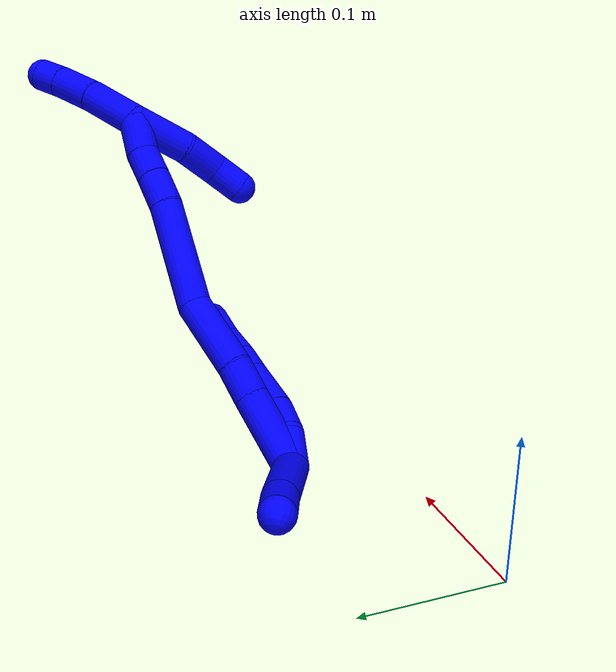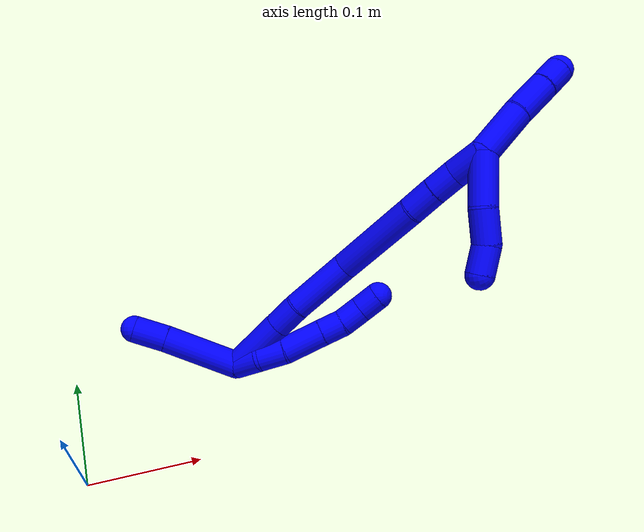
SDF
<sdf version="1.7">
 <world name="default">
  <model name="1">
   <static>0</static>
   <link name="1">
    <collision name="collision-cylinder-e_1_2_8">
     <pose>-0.000751 -0.003531 -0.012491 2.8661 -0.057766 -0.41094</pose>
     <geometry><cylinder><radius>0.0125</radius><length>0.026005</length></cylinder></geometry>
     <surface>
      <friction><ode><mu>1.16</mu><mu2>1.16</mu2><slip1>0</slip1><slip2>0</slip2></ode></friction>
      <contact><ode><kp>1e+06</kp><kd>1</kd><max_vel>0</max_vel><min_depth>0.001</min_depth></ode></contact>
     </surface>
    </collision>
    <visual name="visual-cylinder-e_1_2_8">
     <pose>-0.000751 -0.003531 -0.012491 2.8661 -0.057766 -0.41094</pose>
     <geometry><cylinder><radius>0.0125</radius><length>0.026005</length></cylinder></geometry>
     <material><ambient>0 0 1 1</ambient></material>
    </visual>
    <collision name="collision-cylinder-e_2_8_9">
     <pose>0.000203 -0.013168 -0.035561 2.6181 0.13867 0.507297</pose>
     <geometry><cylinder><radius>0.0125</radius><length>0.024664</length></cylinder></geometry>
     <surface>
      <friction><ode><mu>1.16</mu><mu2>1.16</mu2><slip1>0</slip1><slip2>0</slip2></ode></friction>
      <contact><ode><kp>1e+06</kp><kd>1</kd><max_vel>0</max_vel><min_depth>0.001</min_depth></ode></contact>
     </surface>
    </collision>
    <visual name="visual-cylinder-e_2_8_9">
     <pose>0.000203 -0.013168 -0.035561 2.6181 0.13867 0.507297</pose>
     <geometry><cylinder><radius>0.0125</radius><length>0.024664</length></cylinder></geometry>
     <material><ambient>0 0 1 1</ambient></material>
    </visual>
    <collision name="collision-cylinder-e_3_9_10">
     <pose>0.002963 -0.031369 -0.060692 2.44817 0.055726 0.153971</pose>
     <geometry><cylinder><radius>0.0125</radius><length>0.037906</length></cylinder></geometry>
     <surface>
      <friction><ode><mu>1.16</mu><mu2>1.16</mu2><slip1>0</slip1><slip2>0</slip2></ode></friction>
      <contact><ode><kp>1e+06</kp><kd>1</kd><max_vel>0</max_vel><min_depth>0.001</min_depth></ode></contact>
     </surface>
    </collision>
    <visual name="visual-cylinder-e_3_9_10">
     <pose>0.002963 -0.031369 -0.060692 2.44817 0.055726 0.153971</pose>
     <geometry><cylinder><radius>0.0125</radius><length>0.037906</length></cylinder></geometry>
     <material><ambient>0 0 1 1</ambient></material>
    </visual>
    <collision name="collision-cylinder-e_4_10_11">
     <pose>0.004492 -0.049854 -0.083383 2.47592 0.045662 0.131918</pose>
     <geometry><cylinder><radius>0.0125</radius><length>0.020714</length></cylinder></geometry>
     <surface>
      <friction><ode><mu>1.16</mu><mu2>1.16</mu2><slip1>0</slip1><slip2>0</slip2></ode></friction>
      <contact><ode><kp>1e+06</kp><kd>1</kd><max_vel>0</max_vel><min_depth>0.001</min_depth></ode></contact>
     </surface>
    </collision>
    <visual name="visual-cylinder-e_4_10_11">
     <pose>0.004492 -0.049854 -0.083383 2.47592 0.045662 0.131918</pose>
     <geometry><cylinder><radius>0.0125</radius><length>0.020714</length></cylinder></geometry>
     <material><ambient>0 0 1 1</ambient></material>
    </visual>
    <collision name="collision-cylinder-e_5_11_12">
     <pose>0.003633 -0.063397 -0.098863 2.36922 -0.129184 -0.315513</pose>
     <geometry><cylinder><radius>0.0125</radius><length>0.020674</length></cylinder></geometry>
     <surface>
      <friction><ode><mu>1.16</mu><mu2>1.16</mu2><slip1>0</slip1><slip2>0</slip2></ode></friction>
      <contact><ode><kp>1e+06</kp><kd>1</kd><max_vel>0</max_vel><min_depth>0.001</min_depth></ode></contact>
     </surface>
    </collision>
    <visual name="visual-cylinder-e_5_11_12">
     <pose>0.003633 -0.063397 -0.098863 2.36922 -0.129184 -0.315513</pose>
     <geometry><cylinder><radius>0.0125</radius><length>0.020674</length></cylinder></geometry>
     <material><ambient>0 0 1 1</ambient></material>
    </visual>
    <collision name="collision-cylinder-e_6_12_6">
     <pose>0.000164 -0.076534 -0.113951 2.48397 -0.214994 -0.612646</pose>
     <geometry><cylinder><radius>0.0125</radius><length>0.020036</length></cylinder></geometry>
     <surface>
      <friction><ode><mu>1.16</mu><mu2>1.16</mu2><slip1>0</slip1><slip2>0</slip2></ode></friction>
      <contact><ode><kp>1e+06</kp><kd>1</kd><max_vel>0</max_vel><min_depth>0.001</min_depth></ode></contact>
     </surface>
    </collision>
    <visual name="visual-cylinder-e_6_12_6">
     <pose>0.000164 -0.076534 -0.113951 2.48397 -0.214994 -0.612646</pose>
     <geometry><cylinder><radius>0.0125</radius><length>0.020036</length></cylinder></geometry>
     <material><ambient>0 0 1 1</ambient></material>
    </visual>
    <collision name="collision-cylinder-e_1_2_13">
     <pose>-0.0248 0.006392 0.023599 -0.26452 -0.792522 0.111208</pose>
     <geometry><cylinder><radius>0.0125</radius><length>0.069651</length></cylinder></geometry>
     <surface>
      <friction><ode><mu>1.16</mu><mu2>1.16</mu2><slip1>0</slip1><slip2>0</slip2></ode></friction>
      <contact><ode><kp>1e+06</kp><kd>1</kd><max_vel>0</max_vel><min_depth>0.001</min_depth></ode></contact>
     </surface>
    </collision>
    <visual name="visual-cylinder-e_1_2_13">
     <pose>-0.0248 0.006392 0.023599 -0.26452 -0.792522 0.111208</pose>
     <geometry><cylinder><radius>0.0125</radius><length>0.069651</length></cylinder></geometry>
     <material><ambient>0 0 1 1</ambient></material>
    </visual>
    <collision name="collision-cylinder-e_2_13_5">
     <pose>-0.06002 0.016344 0.057639 -0.328603 -0.756873 0.131651</pose>
     <geometry><cylinder><radius>0.0125</radius><length>0.030349</length></cylinder></geometry>
     <surface>
      <friction><ode><mu>1.16</mu><mu2>1.16</mu2><slip1>0</slip1><slip2>0</slip2></ode></friction>
      <contact><ode><kp>1e+06</kp><kd>1</kd><max_vel>0</max_vel><min_depth>0.001</min_depth></ode></contact>
     </surface>
    </collision>
    <visual name="visual-cylinder-e_2_13_5">
     <pose>-0.06002 0.016344 0.057639 -0.328603 -0.756873 0.131651</pose>
     <geometry><cylinder><radius>0.0125</radius><length>0.030349</length></cylinder></geometry>
     <material><ambient>0 0 1 1</ambient></material>
    </visual>
    <collision name="collision-cylinder-e_1_2_14">
     <pose>-0.009625 -0.015606 -0.021725 2.51866 -0.345393 -0.993071</pose>
     <geometry><cylinder><radius>0.0125</radius><length>0.056856</length></cylinder></geometry>
     <surface>
      <friction><ode><mu>1.16</mu><mu2>1.16</mu2><slip1>0</slip1><slip2>0</slip2></ode></friction>
      <contact><ode><kp>1e+06</kp><kd>1</kd><max_vel>0</max_vel><min_depth>0.001</min_depth></ode></contact>
     </surface>
    </collision>
    <visual name="visual-cylinder-e_1_2_14">
     <pose>-0.009625 -0.015606 -0.021725 2.51866 -0.345393 -0.993071</pose>
     <geometry><cylinder><radius>0.0125</radius><length>0.056856</length></cylinder></geometry>
     <material><ambient>0 0 1 1</ambient></material>
    </visual>
    <collision name="collision-cylinder-e_2_14_15">
     <pose>-0.02375 -0.038087 -0.053569 2.54484 -0.352481 -1.04973</pose>
     <geometry><cylinder><radius>0.0125</radius><length>0.02607</length></cylinder></geometry>
     <surface>
      <friction><ode><mu>1.16</mu><mu2>1.16</mu2><slip1>0</slip1><slip2>0</slip2></ode></friction>
      <contact><ode><kp>1e+06</kp><kd>1</kd><max_vel>0</max_vel><min_depth>0.001</min_depth></ode></contact>
     </surface>
    </collision>
    <visual name="visual-cylinder-e_2_14_15">
     <pose>-0.02375 -0.038087 -0.053569 2.54484 -0.352481 -1.04973</pose>
     <geometry><cylinder><radius>0.0125</radius><length>0.02607</length></cylinder></geometry>
     <material><ambient>0 0 1 1</ambient></material>
    </visual>
    <collision name="collision-cylinder-e_3_15_16">
     <pose>-0.034938 -0.062709 -0.08521 2.45204 -0.235305 -0.635929</pose>
     <geometry><cylinder><radius>0.0125</radius><length>0.057372</length></cylinder></geometry>
     <surface>
      <friction><ode><mu>1.16</mu><mu2>1.16</mu2><slip1>0</slip1><slip2>0</slip2></ode></friction>
      <contact><ode><kp>1e+06</kp><kd>1</kd><max_vel>0</max_vel><min_depth>0.001</min_depth></ode></contact>
     </surface>
    </collision>
    <visual name="visual-cylinder-e_3_15_16">
     <pose>-0.034938 -0.062709 -0.08521 2.45204 -0.235305 -0.635929</pose>
     <geometry><cylinder><radius>0.0125</radius><length>0.057372</length></cylinder></geometry>
     <material><ambient>0 0 1 1</ambient></material>
    </visual>
    <collision name="collision-cylinder-e_4_16_17">
     <pose>-0.057075 -0.094515 -0.141937 2.76164 -0.387003 -1.58963</pose>
     <geometry><cylinder><radius>0.0125</radius><length>0.08187</length></cylinder></geometry>
     <surface>
      <friction><ode><mu>1.16</mu><mu2>1.16</mu2><slip1>0</slip1><slip2>0</slip2></ode></friction>
      <contact><ode><kp>1e+06</kp><kd>1</kd><max_vel>0</max_vel><min_depth>0.001</min_depth></ode></contact>
     </surface>
    </collision>
    <visual name="visual-cylinder-e_4_16_17">
     <pose>-0.057075 -0.094515 -0.141937 2.76164 -0.387003 -1.58963</pose>
     <geometry><cylinder><radius>0.0125</radius><length>0.08187</length></cylinder></geometry>
     <material><ambient>0 0 1 1</ambient></material>
    </visual>
    <collision name="collision-cylinder-e_5_17_18">
     <pose>-0.076782 -0.114645 -0.187774 2.62282 -0.334654 -1.13367</pose>
     <geometry><cylinder><radius>0.0125</radius><length>0.025926</length></cylinder></geometry>
     <surface>
      <friction><ode><mu>1.16</mu><mu2>1.16</mu2><slip1>0</slip1><slip2>0</slip2></ode></friction>
      <contact><ode><kp>1e+06</kp><kd>1</kd><max_vel>0</max_vel><min_depth>0.001</min_depth></ode></contact>
     </surface>
    </collision>
    <visual name="visual-cylinder-e_5_17_18">
     <pose>-0.076782 -0.114645 -0.187774 2.62282 -0.334654 -1.13367</pose>
     <geometry><cylinder><radius>0.0125</radius><length>0.025926</length></cylinder></geometry>
     <material><ambient>0 0 1 1</ambient></material>
    </visual>
    <collision name="collision-cylinder-e_6_18_19">
     <pose>-0.084279 -0.126213 -0.207504 2.59802 -0.295779 -0.981857</pose>
     <geometry><cylinder><radius>0.0125</radius><length>0.022225</length></cylinder></geometry>
     <surface>
      <friction><ode><mu>1.16</mu><mu2>1.16</mu2><slip1>0</slip1><slip2>0</slip2></ode></friction>
      <contact><ode><kp>1e+06</kp><kd>1</kd><max_vel>0</max_vel><min_depth>0.001</min_depth></ode></contact>
     </surface>
    </collision>
    <visual name="visual-cylinder-e_6_18_19">
     <pose>-0.084279 -0.126213 -0.207504 2.59802 -0.295779 -0.981857</pose>
     <geometry><cylinder><radius>0.0125</radius><length>0.022225</length></cylinder></geometry>
     <material><ambient>0 0 1 1</ambient></material>
    </visual>
    <collision name="collision-cylinder-e_7_19_1">
     <pose>-0.092553 -0.136385 -0.229756 2.80015 -0.34616 -1.58478</pose>
     <geometry><cylinder><radius>0.0125</radius><length>0.029681</length></cylinder></geometry>
     <surface>
      <friction><ode><mu>1.16</mu><mu2>1.16</mu2><slip1>0</slip1><slip2>0</slip2></ode></friction>
      <contact><ode><kp>1e+06</kp><kd>1</kd><max_vel>0</max_vel><min_depth>0.001</min_depth></ode></contact>
     </surface>
    </collision>
    <visual name="visual-cylinder-e_7_19_1">
     <pose>-0.092553 -0.136385 -0.229756 2.80015 -0.34616 -1.58478</pose>
     <geometry><cylinder><radius>0.0125</radius><length>0.029681</length></cylinder></geometry>
     <material><ambient>0 0 1 1</ambient></material>
    </visual>
    <collision name="collision-cylinder-e_1_1_20">
     <pose>-0.101765 -0.160435 -0.253608 2.07524 -0.186532 -0.314356</pose>
     <geometry><cylinder><radius>0.0125</radius><length>0.045046</length></cylinder></geometry>
     <surface>
      <friction><ode><mu>1.16</mu><mu2>1.16</mu2><slip1>0</slip1><slip2>0</slip2></ode></friction>
      <contact><ode><kp>1e+06</kp><kd>1</kd><max_vel>0</max_vel><min_depth>0.001</min_depth></ode></contact>
     </surface>
    </collision>
    <visual name="visual-cylinder-e_1_1_20">
     <pose>-0.101765 -0.160435 -0.253608 2.07524 -0.186532 -0.314356</pose>
     <geometry><cylinder><radius>0.0125</radius><length>0.045046</length></cylinder></geometry>
     <material><ambient>0 0 1 1</ambient></material>
    </visual>
    <collision name="collision-cylinder-e_2_20_21">
     <pose>-0.107438 -0.194753 -0.271988 2.04575 -0.088799 -0.145352</pose>
     <geometry><cylinder><radius>0.0125</radius><length>0.033738</length></cylinder></geometry>
     <surface>
      <friction><ode><mu>1.16</mu><mu2>1.16</mu2><slip1>0</slip1><slip2>0</slip2></ode></friction>
      <contact><ode><kp>1e+06</kp><kd>1</kd><max_vel>0</max_vel><min_depth>0.001</min_depth></ode></contact>
     </surface>
    </collision>
    <visual name="visual-cylinder-e_2_20_21">
     <pose>-0.107438 -0.194753 -0.271988 2.04575 -0.088799 -0.145352</pose>
     <geometry><cylinder><radius>0.0125</radius><length>0.033738</length></cylinder></geometry>
     <material><ambient>0 0 1 1</ambient></material>
    </visual>
    <collision name="collision-cylinder-e_3_21_4">
     <pose>-0.109509 -0.219352 -0.284027 1.99451 -0.054255 -0.08396</pose>
     <geometry><cylinder><radius>0.0125</radius><length>0.021216</length></cylinder></geometry>
     <surface>
      <friction><ode><mu>1.16</mu><mu2>1.16</mu2><slip1>0</slip1><slip2>0</slip2></ode></friction>
      <contact><ode><kp>1e+06</kp><kd>1</kd><max_vel>0</max_vel><min_depth>0.001</min_depth></ode></contact>
     </surface>
    </collision>
    <visual name="visual-cylinder-e_3_21_4">
     <pose>-0.109509 -0.219352 -0.284027 1.99451 -0.054255 -0.08396</pose>
     <geometry><cylinder><radius>0.0125</radius><length>0.021216</length></cylinder></geometry>
     <material><ambient>0 0 1 1</ambient></material>
    </visual>
    <collision name="collision-cylinder-e_1_1_22">
     <pose>-0.081925 -0.125006 -0.241903 -1.50808 0.772095 -0.729297</pose>
     <geometry><cylinder><radius>0.0125</radius><length>0.044903</length></cylinder></geometry>
     <surface>
      <friction><ode><mu>1.16</mu><mu2>1.16</mu2><slip1>0</slip1><slip2>0</slip2></ode></friction>
      <contact><ode><kp>1e+06</kp><kd>1</kd><max_vel>0</max_vel><min_depth>0.001</min_depth></ode></contact>
     </surface>
    </collision>
    <visual name="visual-cylinder-e_1_1_22">
     <pose>-0.081925 -0.125006 -0.241903 -1.50808 0.772095 -0.729297</pose>
     <geometry><cylinder><radius>0.0125</radius><length>0.044903</length></cylinder></geometry>
     <material><ambient>0 0 1 1</ambient></material>
    </visual>
    <collision name="collision-cylinder-e_2_22_23">
     <pose>-0.053714 -0.100545 -0.240369 -1.50842 0.979587 -0.928678</pose>
     <geometry><cylinder><radius>0.0125</radius><length>0.030226</length></cylinder></geometry>
     <surface>
      <friction><ode><mu>1.16</mu><mu2>1.16</mu2><slip1>0</slip1><slip2>0</slip2></ode></friction>
      <contact><ode><kp>1e+06</kp><kd>1</kd><max_vel>0</max_vel><min_depth>0.001</min_depth></ode></contact>
     </surface>
    </collision>
    <visual name="visual-cylinder-e_2_22_23">
     <pose>-0.053714 -0.100545 -0.240369 -1.50842 0.979587 -0.928678</pose>
     <geometry><cylinder><radius>0.0125</radius><length>0.030226</length></cylinder></geometry>
     <material><ambient>0 0 1 1</ambient></material>
    </visual>
    <collision name="collision-cylinder-e_3_23_3">
     <pose>-0.033065 -0.083291 -0.236568 -1.21607 0.709604 -0.50471</pose>
     <geometry><cylinder><radius>0.0125</radius><length>0.024871</length></cylinder></geometry>
     <surface>
      <friction><ode><mu>1.16</mu><mu2>1.16</mu2><slip1>0</slip1><slip2>0</slip2></ode></friction>
      <contact><ode><kp>1e+06</kp><kd>1</kd><max_vel>0</max_vel><min_depth>0.001</min_depth></ode></contact>
     </surface>
    </collision>
    <visual name="visual-cylinder-e_3_23_3">
     <pose>-0.033065 -0.083291 -0.236568 -1.21607 0.709604 -0.50471</pose>
     <geometry><cylinder><radius>0.0125</radius><length>0.024871</length></cylinder></geometry>
     <material><ambient>0 0 1 1</ambient></material>
    </visual>
    <collision name="collision-sphere-3">
     <pose>-0.024962 -0.074445 -0.233291 0 -0 0</pose>
     <geometry><sphere><radius>0.0125</radius></sphere></geometry>
     <surface>
      <friction><ode><mu>1.16</mu><mu2>1.16</mu2><slip1>0</slip1><slip2>0</slip2></ode></friction>
      <contact><ode><kp>1e+06</kp><kd>1</kd><max_vel>0</max_vel><min_depth>0.001</min_depth></ode></contact>
     </surface>
    </collision>
    <visual name="visual-sphere-3">
     <pose>-0.024962 -0.074445 -0.233291 0 -0 0</pose>
     <geometry><sphere><radius>0.0125</radius></sphere></geometry>
     <material><ambient>0 0 1 1</ambient></material>
    </visual>
    <collision name="collision-sphere-23">
     <pose>-0.041167 -0.092138 -0.239844 0 -0 0</pose>
     <geometry><sphere><radius>0.0125</radius></sphere></geometry>
     <surface>
      <friction><ode><mu>1.16</mu><mu2>1.16</mu2><slip1>0</slip1><slip2>0</slip2></ode></friction>
      <contact><ode><kp>1e+06</kp><kd>1</kd><max_vel>0</max_vel><min_depth>0.001</min_depth></ode></contact>
     </surface>
    </collision>
    <visual name="visual-sphere-23">
     <pose>-0.041167 -0.092138 -0.239844 0 -0 0</pose>
     <geometry><sphere><radius>0.0125</radius></sphere></geometry>
     <material><ambient>0 0 1 1</ambient></material>
    </visual>
    <collision name="collision-sphere-22">
     <pose>-0.066262 -0.108952 -0.240894 0 -0 0</pose>
     <geometry><sphere><radius>0.0125</radius></sphere></geometry>
     <surface>
      <friction><ode><mu>1.16</mu><mu2>1.16</mu2><slip1>0</slip1><slip2>0</slip2></ode></friction>
      <contact><ode><kp>1e+06</kp><kd>1</kd><max_vel>0</max_vel><min_depth>0.001</min_depth></ode></contact>
     </surface>
    </collision>
    <visual name="visual-sphere-22">
     <pose>-0.066262 -0.108952 -0.240894 0 -0 0</pose>
     <geometry><sphere><radius>0.0125</radius></sphere></geometry>
     <material><ambient>0 0 1 1</ambient></material>
    </visual>
    <collision name="collision-sphere-4">
     <pose>-0.110085 -0.229008 -0.288382 0 -0 0</pose>
     <geometry><sphere><radius>0.0125</radius></sphere></geometry>
     <surface>
      <friction><ode><mu>1.16</mu><mu2>1.16</mu2><slip1>0</slip1><slip2>0</slip2></ode></friction>
      <contact><ode><kp>1e+06</kp><kd>1</kd><max_vel>0</max_vel><min_depth>0.001</min_depth></ode></contact>
     </surface>
    </collision>
    <visual name="visual-sphere-4">
     <pose>-0.110085 -0.229008 -0.288382 0 -0 0</pose>
     <geometry><sphere><radius>0.0125</radius></sphere></geometry>
     <material><ambient>0 0 1 1</ambient></material>
    </visual>
    <collision name="collision-sphere-21">
     <pose>-0.108934 -0.209696 -0.279672 0 -0 0</pose>
     <geometry><sphere><radius>0.0125</radius></sphere></geometry>
     <surface>
      <friction><ode><mu>1.16</mu><mu2>1.16</mu2><slip1>0</slip1><slip2>0</slip2></ode></friction>
      <contact><ode><kp>1e+06</kp><kd>1</kd><max_vel>0</max_vel><min_depth>0.001</min_depth></ode></contact>
     </surface>
    </collision>
    <visual name="visual-sphere-21">
     <pose>-0.108934 -0.209696 -0.279672 0 -0 0</pose>
     <geometry><sphere><radius>0.0125</radius></sphere></geometry>
     <material><ambient>0 0 1 1</ambient></material>
    </visual>
    <collision name="collision-sphere-20">
     <pose>-0.105942 -0.179811 -0.264305 0 -0 0</pose>
     <geometry><sphere><radius>0.0125</radius></sphere></geometry>
     <surface>
      <friction><ode><mu>1.16</mu><mu2>1.16</mu2><slip1>0</slip1><slip2>0</slip2></ode></friction>
      <contact><ode><kp>1e+06</kp><kd>1</kd><max_vel>0</max_vel><min_depth>0.001</min_depth></ode></contact>
     </surface>
    </collision>
    <visual name="visual-sphere-20">
     <pose>-0.105942 -0.179811 -0.264305 0 -0 0</pose>
     <geometry><sphere><radius>0.0125</radius></sphere></geometry>
     <material><ambient>0 0 1 1</ambient></material>
    </visual>
    <collision name="collision-sphere-12">
     <pose>0.002301 -0.070551 -0.106205 0 -0 0</pose>
     <geometry><sphere><radius>0.0125</radius></sphere></geometry>
     <surface>
      <friction><ode><mu>1.16</mu><mu2>1.16</mu2><slip1>0</slip1><slip2>0</slip2></ode></friction>
      <contact><ode><kp>1e+06</kp><kd>1</kd><max_vel>0</max_vel><min_depth>0.001</min_depth></ode></contact>
     </surface>
    </collision>
    <visual name="visual-sphere-12">
     <pose>0.002301 -0.070551 -0.106205 0 -0 0</pose>
     <geometry><sphere><radius>0.0125</radius></sphere></geometry>
     <material><ambient>0 0 1 1</ambient></material>
    </visual>
    <collision name="collision-sphere-11">
     <pose>0.004965 -0.056244 -0.09152 0 -0 0</pose>
     <geometry><sphere><radius>0.0125</radius></sphere></geometry>
     <surface>
      <friction><ode><mu>1.16</mu><mu2>1.16</mu2><slip1>0</slip1><slip2>0</slip2></ode></friction>
      <contact><ode><kp>1e+06</kp><kd>1</kd><max_vel>0</max_vel><min_depth>0.001</min_depth></ode></contact>
     </surface>
    </collision>
    <visual name="visual-sphere-11">
     <pose>0.004965 -0.056244 -0.09152 0 -0 0</pose>
     <geometry><sphere><radius>0.0125</radius></sphere></geometry>
     <material><ambient>0 0 1 1</ambient></material>
    </visual>
    <collision name="collision-sphere-10">
     <pose>0.004019 -0.043465 -0.075246 0 -0 0</pose>
     <geometry><sphere><radius>0.0125</radius></sphere></geometry>
     <surface>
      <friction><ode><mu>1.16</mu><mu2>1.16</mu2><slip1>0</slip1><slip2>0</slip2></ode></friction>
      <contact><ode><kp>1e+06</kp><kd>1</kd><max_vel>0</max_vel><min_depth>0.001</min_depth></ode></contact>
     </surface>
    </collision>
    <visual name="visual-sphere-10">
     <pose>0.004019 -0.043465 -0.075246 0 -0 0</pose>
     <geometry><sphere><radius>0.0125</radius></sphere></geometry>
     <material><ambient>0 0 1 1</ambient></material>
    </visual>
    <collision name="collision-sphere-9">
     <pose>0.001908 -0.019273 -0.046138 0 -0 0</pose>
     <geometry><sphere><radius>0.0125</radius></sphere></geometry>
     <surface>
      <friction><ode><mu>1.16</mu><mu2>1.16</mu2><slip1>0</slip1><slip2>0</slip2></ode></friction>
      <contact><ode><kp>1e+06</kp><kd>1</kd><max_vel>0</max_vel><min_depth>0.001</min_depth></ode></contact>
     </surface>
    </collision>
    <visual name="visual-sphere-9">
     <pose>0.001908 -0.019273 -0.046138 0 -0 0</pose>
     <geometry><sphere><radius>0.0125</radius></sphere></geometry>
     <material><ambient>0 0 1 1</ambient></material>
    </visual>
    <collision name="collision-sphere-2">
     <geometry><sphere><radius>0.0125</radius></sphere></geometry>
     <surface>
      <friction><ode><mu>1.16</mu><mu2>1.16</mu2><slip1>0</slip1><slip2>0</slip2></ode></friction>
      <contact><ode><kp>1e+06</kp><kd>1</kd><max_vel>0</max_vel><min_depth>0.001</min_depth></ode></contact>
     </surface>
    </collision>
    <visual name="visual-sphere-2">
     <geometry><sphere><radius>0.0125</radius></sphere></geometry>
     <material><ambient>0 0 1 1</ambient></material>
    </visual>
    <collision name="collision-sphere-19">
     <pose>-0.087518 -0.131711 -0.216602 0 -0 0</pose>
     <geometry><sphere><radius>0.0125</radius></sphere></geometry>
     <surface>
      <friction><ode><mu>1.16</mu><mu2>1.16</mu2><slip1>0</slip1><slip2>0</slip2></ode></friction>
      <contact><ode><kp>1e+06</kp><kd>1</kd><max_vel>0</max_vel><min_depth>0.001</min_depth></ode></contact>
     </surface>
    </collision>
    <visual name="visual-sphere-19">
     <pose>-0.087518 -0.131711 -0.216602 0 -0 0</pose>
     <geometry><sphere><radius>0.0125</radius></sphere></geometry>
     <material><ambient>0 0 1 1</ambient></material>
    </visual>
    <collision name="collision-sphere-8">
     <pose>-0.001501 -0.007062 -0.024983 0 -0 0</pose>
     <geometry><sphere><radius>0.0125</radius></sphere></geometry>
     <surface>
      <friction><ode><mu>1.16</mu><mu2>1.16</mu2><slip1>0</slip1><slip2>0</slip2></ode></friction>
      <contact><ode><kp>1e+06</kp><kd>1</kd><max_vel>0</max_vel><min_depth>0.001</min_depth></ode></contact>
     </surface>
    </collision>
    <visual name="visual-sphere-8">
     <pose>-0.001501 -0.007062 -0.024983 0 -0 0</pose>
     <geometry><sphere><radius>0.0125</radius></sphere></geometry>
     <material><ambient>0 0 1 1</ambient></material>
    </visual>
    <collision name="collision-sphere-6">
     <pose>-0.001973 -0.082516 -0.121698 0 -0 0</pose>
     <geometry><sphere><radius>0.0125</radius></sphere></geometry>
     <surface>
      <friction><ode><mu>1.16</mu><mu2>1.16</mu2><slip1>0</slip1><slip2>0</slip2></ode></friction>
      <contact><ode><kp>1e+06</kp><kd>1</kd><max_vel>0</max_vel><min_depth>0.001</min_depth></ode></contact>
     </surface>
    </collision>
    <visual name="visual-sphere-6">
     <pose>-0.001973 -0.082516 -0.121698 0 -0 0</pose>
     <geometry><sphere><radius>0.0125</radius></sphere></geometry>
     <material><ambient>0 0 1 1</ambient></material>
    </visual>
    <collision name="collision-sphere-13">
     <pose>-0.0496 0.012784 0.047198 0 -0 0</pose>
     <geometry><sphere><radius>0.0125</radius></sphere></geometry>
     <surface>
      <friction><ode><mu>1.16</mu><mu2>1.16</mu2><slip1>0</slip1><slip2>0</slip2></ode></friction>
      <contact><ode><kp>1e+06</kp><kd>1</kd><max_vel>0</max_vel><min_depth>0.001</min_depth></ode></contact>
     </surface>
    </collision>
    <visual name="visual-sphere-13">
     <pose>-0.0496 0.012784 0.047198 0 -0 0</pose>
     <geometry><sphere><radius>0.0125</radius></sphere></geometry>
     <material><ambient>0 0 1 1</ambient></material>
    </visual>
    <collision name="collision-sphere-5">
     <pose>-0.070439 0.019905 0.068081 0 -0 0</pose>
     <geometry><sphere><radius>0.0125</radius></sphere></geometry>
     <surface>
      <friction><ode><mu>1.16</mu><mu2>1.16</mu2><slip1>0</slip1><slip2>0</slip2></ode></friction>
      <contact><ode><kp>1e+06</kp><kd>1</kd><max_vel>0</max_vel><min_depth>0.001</min_depth></ode></contact>
     </surface>
    </collision>
    <visual name="visual-sphere-5">
     <pose>-0.070439 0.019905 0.068081 0 -0 0</pose>
     <geometry><sphere><radius>0.0125</radius></sphere></geometry>
     <material><ambient>0 0 1 1</ambient></material>
    </visual>
    <collision name="collision-sphere-14">
     <pose>-0.01925 -0.031212 -0.04345 0 -0 0</pose>
     <geometry><sphere><radius>0.0125</radius></sphere></geometry>
     <surface>
      <friction><ode><mu>1.16</mu><mu2>1.16</mu2><slip1>0</slip1><slip2>0</slip2></ode></friction>
      <contact><ode><kp>1e+06</kp><kd>1</kd><max_vel>0</max_vel><min_depth>0.001</min_depth></ode></contact>
     </surface>
    </collision>
    <visual name="visual-sphere-14">
     <pose>-0.01925 -0.031212 -0.04345 0 -0 0</pose>
     <geometry><sphere><radius>0.0125</radius></sphere></geometry>
     <material><ambient>0 0 1 1</ambient></material>
    </visual>
    <collision name="collision-sphere-15">
     <pose>-0.02825 -0.044962 -0.063688 0 -0 0</pose>
     <geometry><sphere><radius>0.0125</radius></sphere></geometry>
     <surface>
      <friction><ode><mu>1.16</mu><mu2>1.16</mu2><slip1>0</slip1><slip2>0</slip2></ode></friction>
      <contact><ode><kp>1e+06</kp><kd>1</kd><max_vel>0</max_vel><min_depth>0.001</min_depth></ode></contact>
     </surface>
    </collision>
    <visual name="visual-sphere-15">
     <pose>-0.02825 -0.044962 -0.063688 0 -0 0</pose>
     <geometry><sphere><radius>0.0125</radius></sphere></geometry>
     <material><ambient>0 0 1 1</ambient></material>
    </visual>
    <collision name="collision-sphere-16">
     <pose>-0.041625 -0.080455 -0.106732 0 -0 0</pose>
     <geometry><sphere><radius>0.0125</radius></sphere></geometry>
     <surface>
      <friction><ode><mu>1.16</mu><mu2>1.16</mu2><slip1>0</slip1><slip2>0</slip2></ode></friction>
      <contact><ode><kp>1e+06</kp><kd>1</kd><max_vel>0</max_vel><min_depth>0.001</min_depth></ode></contact>
     </surface>
    </collision>
    <visual name="visual-sphere-16">
     <pose>-0.041625 -0.080455 -0.106732 0 -0 0</pose>
     <geometry><sphere><radius>0.0125</radius></sphere></geometry>
     <material><ambient>0 0 1 1</ambient></material>
    </visual>
    <collision name="collision-sphere-17">
     <pose>-0.072525 -0.108574 -0.177141 0 -0 0</pose>
     <geometry><sphere><radius>0.0125</radius></sphere></geometry>
     <surface>
      <friction><ode><mu>1.16</mu><mu2>1.16</mu2><slip1>0</slip1><slip2>0</slip2></ode></friction>
      <contact><ode><kp>1e+06</kp><kd>1</kd><max_vel>0</max_vel><min_depth>0.001</min_depth></ode></contact>
     </surface>
    </collision>
    <visual name="visual-sphere-17">
     <pose>-0.072525 -0.108574 -0.177141 0 -0 0</pose>
     <geometry><sphere><radius>0.0125</radius></sphere></geometry>
     <material><ambient>0 0 1 1</ambient></material>
    </visual>
    <collision name="collision-sphere-18">
     <pose>-0.08104 -0.120715 -0.198407 0 -0 0</pose>
     <geometry><sphere><radius>0.0125</radius></sphere></geometry>
     <surface>
      <friction><ode><mu>1.16</mu><mu2>1.16</mu2><slip1>0</slip1><slip2>0</slip2></ode></friction>
      <contact><ode><kp>1e+06</kp><kd>1</kd><max_vel>0</max_vel><min_depth>0.001</min_depth></ode></contact>
     </surface>
    </collision>
    <visual name="visual-sphere-18">
     <pose>-0.08104 -0.120715 -0.198407 0 -0 0</pose>
     <geometry><sphere><radius>0.0125</radius></sphere></geometry>
     <material><ambient>0 0 1 1</ambient></material>
    </visual>
    <collision name="collision-sphere-1">
     <pose>-0.097588 -0.14106 -0.242911 0 -0 0</pose>
     <geometry><sphere><radius>0.0125</radius></sphere></geometry>
     <surface>
      <friction><ode><mu>1.16</mu><mu2>1.16</mu2><slip1>0</slip1><slip2>0</slip2></ode></friction>
      <contact><ode><kp>1e+06</kp><kd>1</kd><max_vel>0</max_vel><min_depth>0.001</min_depth></ode></contact>
     </surface>
    </collision>
    <visual name="visual-sphere-1">
     <pose>-0.097588 -0.14106 -0.242911 0 -0 0</pose>
     <geometry><sphere><radius>0.0125</radius></sphere></geometry>
     <material><ambient>0 0 1 1</ambient></material>
    </visual>
    <inertial>
     <pose>-0.045854 -0.075677 -0.122989 0 -0 0</pose>
     <mass>0.75</mass>
     <inertia><ixx>-9e-06</ixx><ixy>0</ixy><ixz>0</ixz><iyy>-8.7e-05</iyy><iyz>0</iyz><izz>6.9e-05</izz></inertia>
    </inertial>
   </link>
   <pose>0.148458 0.078553 0.0119 2.8843 0.988078 -0.877469</pose>
  </model>
 </world>
</sdf>
